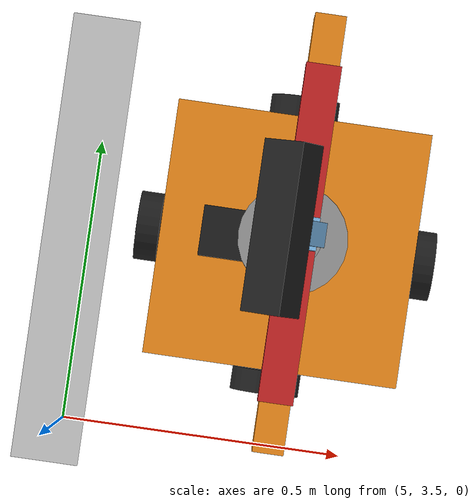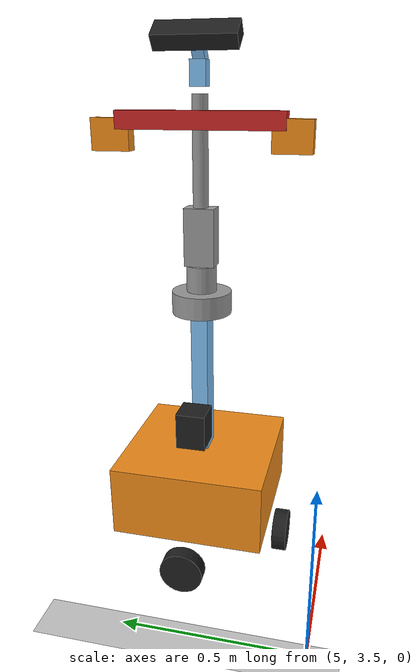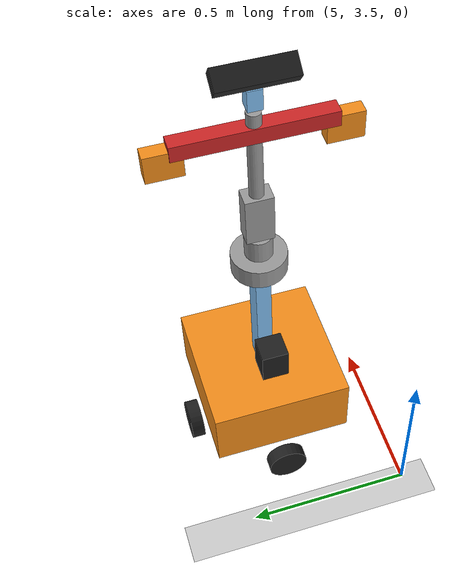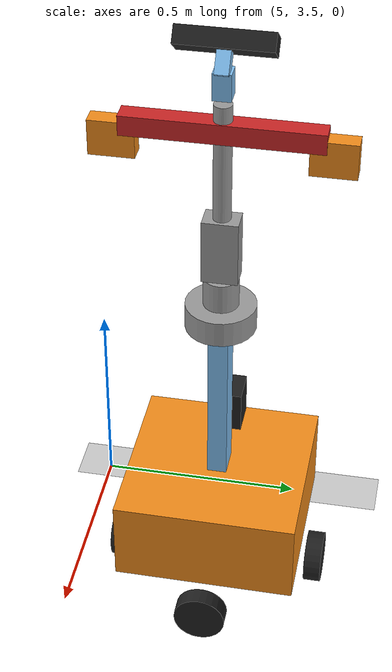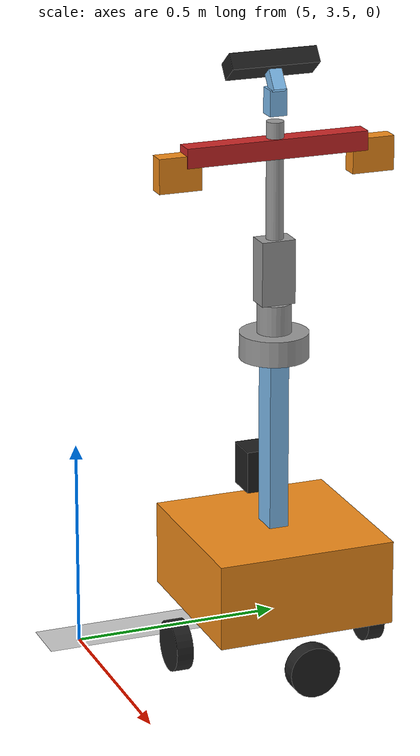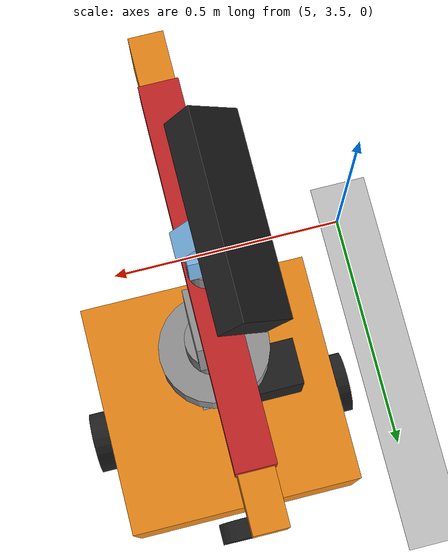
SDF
<sdf version="1.4">
 <world name="default">
  <scene>
   <ambient>0.5 0.5 0.5 1</ambient>
   <shadows>0</shadows>
   <grid>0</grid>
   <background>0.7 0.7 0.7 1</background>
  </scene>
  <physics type="ode">
   <real_time_update_rate>333.0</real_time_update_rate>
   <max_step_size>0.003</max_step_size>
   <ode><solver><type>quick</type><iters>100</iters></solver><constraints><cfm>0.0001</cfm></constraints></ode>
  </physics>
  <model name="gplane">
   <link name="body">
    <collision name="gplane_coll">
     <geometry><plane><normal>0 0 1</normal><size>10.075 13.18</size></plane></geometry>
     <surface><contact><ode><kp>1e+06</kp><kd>1</kd></ode></contact></surface>
     <laser_retro>2000</laser_retro>
    </collision>
    <visual name="gplane_vis">
     <geometry><plane><normal>0 0 1</normal><size>10.075 13.18</size></plane></geometry>
     <material>
      <script>
       <uri>model://base_materials/carpet/scripts</uri>
       <uri>model://base_materials/carpet/textures</uri>
       <name>carpet/carpet01</name>
      </script>
     </material>
     <cast_shadows>0</cast_shadows>
    </visual>
    <velocity_decay><linear>0</linear><angular>0</angular></velocity_decay>
   </link>
   <static>1</static>
  </model>
  <light name="inner_point_white1" type="point">
   <pose>4 5 4 0 0 0</pose>
   <diffuse>0.2 0.2 0.2 1</diffuse>
   <specular>0.1 0.1 0.1 1</specular>
   <attenuation>
    <range>20</range>
    <linear>0.1</linear>
    <constant>0.2</constant>
    <quadratic>0</quadratic>
   </attenuation>
   <cast_shadows>0</cast_shadows>
   <direction>0 0 -1</direction>
  </light>
  <light name="inner_point_white2" type="point">
   <pose>4 10 4 0 0 0</pose>
   <diffuse>0.2 0.2 0.2 1</diffuse>
   <specular>0.1 0.1 0.1 1</specular>
   <attenuation>
    <range>20</range>
    <linear>0.1</linear>
    <constant>0.2</constant>
    <quadratic>0</quadratic>
   </attenuation>
   <cast_shadows>0</cast_shadows>
   <direction>0 0 -1</direction>
  </light>
  <light name="inner_point_white3" type="point">
   <pose>8 5 4 0 0 0</pose>
   <diffuse>0.2 0.2 0.2 1</diffuse>
   <specular>0.1 0.1 0.1 1</specular>
   <attenuation>
    <range>20</range>
    <linear>0.1</linear>
    <constant>0.2</constant>
    <quadratic>0</quadratic>
   </attenuation>
   <cast_shadows>0</cast_shadows>
   <direction>0 0 -1</direction>
  </light>
  <light name="inner_point_white4" type="point">
   <pose>8 10 4 0 0 0</pose>
   <diffuse>0.2 0.2 0.2 1</diffuse>
   <specular>0.1 0.1 0.1 1</specular>
   <attenuation>
    <range>20</range>
    <linear>0.1</linear>
    <constant>0.2</constant>
    <quadratic>0</quadratic>
   </attenuation>
   <cast_shadows>0</cast_shadows>
   <direction>0 0 -1</direction>
  </light>
  <include>
   <static>0</static>
   <uri>model://justina_simple</uri>
   <pose>5.35 3.86 0.05 0 0 3.14</pose>
   <name>justina</name>
  </include>
 </world>
</sdf>

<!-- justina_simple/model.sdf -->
<sdf version='1.6'>
  <model name='justina_simple'>
    <link name='base_link'>
      <pose frame=''>0 0 0 0 -0 0</pose>
      <inertial>
        <pose frame=''>0.001268 0 0.809239 0 -0 0</pose>
        <mass>13.8</mass>
        <inertia>
          <ixx>4.08206</ixx>
          <ixy>-1.50756e-09</ixy>
          <ixz>-0.000861703</ixz>
          <iyy>4.02369</iyy>
          <iyz>1.14605e-09</iyz>
          <izz>0.289949</izz>
        </inertia>
      </inertial>
      <collision name='base_link_collision'>
        <pose frame=''>0 0 0.235 0 -0 0</pose>
        <geometry>
          <box>
            <size>0.42 0.42 0.2</size>
          </box>
        </geometry>
        <surface>
          <contact>
            <ode/>
          </contact>
          <friction>
            <ode/>
          </friction>
        </surface>
      </collision>
      <collision name='base_link_fixed_joint_lump__laser_link_collision_1'>
        <pose frame=''>0.1 0 0.44 0 -0 0</pose>
        <geometry>
          <box>
            <size>0.08 0.08 0.1</size>
          </box>
        </geometry>
        <surface>
          <contact>
            <ode/>
          </contact>
          <friction>
            <ode/>
          </friction>
        </surface>
      </collision>
      <collision name='base_link_fixed_joint_lump__spine_link_collision_2'>
        <pose frame=''>0 0 0.41 0 -0 0</pose>
        <geometry>
          <box>
            <size>0.07 0.045 0.7</size>
          </box>
        </geometry>
        <surface>
          <contact>
            <ode/>
          </contact>
          <friction>
            <ode/>
          </friction>
        </surface>
      </collision>
      <collision name='base_link_fixed_joint_lump__waist_link_collision_3'>
        <pose frame=''>0 0 0.77 0 -0 0</pose>
        <geometry>
          <cylinder>
            <length>0.06</length>
            <radius>0.08</radius>
          </cylinder>
        </geometry>
        <surface>
          <contact>
            <ode/>
          </contact>
          <friction>
            <ode/>
          </friction>
        </surface>
      </collision>
      <collision name='base_link_fixed_joint_lump__waist_link_collision_4'>
        <pose frame=''>0 0 0.83 0 -0 0</pose>
        <geometry>
          <cylinder>
            <length>0.08</length>
            <radius>0.04</radius>
          </cylinder>
        </geometry>
        <surface>
          <contact>
            <ode/>
          </contact>
          <friction>
            <ode/>
          </friction>
        </surface>
      </collision>
      <collision name='base_link_fixed_joint_lump__waist_link_collision_5'>
        <pose frame=''>0 0 0.945 0 -0 0</pose>
        <geometry>
          <box>
            <size>0.055 0.08 0.15</size>
          </box>
        </geometry>
        <surface>
          <contact>
            <ode/>
          </contact>
          <friction>
            <ode/>
          </friction>
        </surface>
      </collision>
      <collision name='base_link_fixed_joint_lump__waist_link_collision_6'>
        <pose frame=''>0 0 1.155 0 -0 0</pose>
        <geometry>
          <cylinder>
            <length>0.27</length>
            <radius>0.02</radius>
          </cylinder>
        </geometry>
        <surface>
          <contact>
            <ode/>
          </contact>
          <friction>
            <ode/>
          </friction>
        </surface>
      </collision>
      <collision name='base_link_fixed_joint_lump__shoulders_link_collision_7'>
        <pose frame=''>0 0 1.23 0 -0 0</pose>
        <geometry>
          <box>
            <size>0.045 0.43 0.045</size>
          </box>
        </geometry>
        <surface>
          <contact>
            <ode/>
          </contact>
          <friction>
            <ode/>
          </friction>
        </surface>
      </collision>
      <collision name='base_link_fixed_joint_lump__head_link1_collision_8'>
        <pose frame=''>0 0 1.335 0 -0 0</pose>
        <geometry>
          <box>
            <size>0.04 0.04 0.06</size>
          </box>
        </geometry>
        <surface>
          <contact>
            <ode/>
          </contact>
          <friction>
            <ode/>
          </friction>
        </surface>
      </collision>
      <collision name='base_link_fixed_joint_lump__head_link2_collision_9'>
        <pose frame=''>0.006844 0 1.39112 0 0.65 0</pose>
        <geometry>
          <box>
            <size>0.03 0.03 0.08</size>
          </box>
        </geometry>
        <surface>
          <contact>
            <ode/>
          </contact>
          <friction>
            <ode/>
          </friction>
        </surface>
      </collision>
      <collision name='base_link_fixed_joint_lump__kinect_link_collision_10'>
        <pose frame=''>0.025 0 1.415 -2.2208 -2e-06 -1.5708</pose>
        <geometry>
          <box>
            <size>0.207 0.04 0.058</size>
          </box>
        </geometry>
        <surface>
          <contact>
            <ode/>
          </contact>
          <friction>
            <ode/>
          </friction>
        </surface>
      </collision>
      <collision name='base_link_fixed_joint_lump__shoulders_left_link_collision_11'>
        <pose frame=''>0 0.23 1.195 0 -0 0</pose>
        <geometry>
          <box>
            <size>0.04 0.1 0.08</size>
          </box>
        </geometry>
        <surface>
          <contact>
            <ode/>
          </contact>
          <friction>
            <ode/>
          </friction>
        </surface>
      </collision>
      <collision name='base_link_fixed_joint_lump__shoulders_right_link_collision_12'>
        <pose frame=''>0 -0.23 1.195 0 -0 0</pose>
        <geometry>
          <box>
            <size>0.04 0.1 0.08</size>
          </box>
        </geometry>
        <surface>
          <contact>
            <ode/>
          </contact>
          <friction>
            <ode/>
          </friction>
        </surface>
      </collision>
      <collision name='base_link_fixed_joint_lump__wheel_back_collision_13'>
        <pose frame=''>-0.24 0 0.065 1.5708 -0 1.5708</pose>
        <geometry>
          <cylinder>
            <length>0.04</length>
            <radius>0.06</radius>
          </cylinder>
        </geometry>
        <surface>
          <contact>
            <ode/>
          </contact>
          <friction>
            <ode/>
          </friction>
        </surface>
      </collision>
      <collision name='base_link_fixed_joint_lump__wheel_front_collision_14'>
        <pose frame=''>0.24 0 0.065 1.5708 -0 1.5708</pose>
        <geometry>
          <cylinder>
            <length>0.04</length>
            <radius>0.06</radius>
          </cylinder>
        </geometry>
        <surface>
          <contact>
            <ode/>
          </contact>
          <friction>
            <ode/>
          </friction>
        </surface>
      </collision>
      <collision name='base_link_fixed_joint_lump__wheel_left_collision_15'>
        <pose frame=''>0 -0.24 0.065 1.5708 -0 0</pose>
        <geometry>
          <cylinder>
            <length>0.04</length>
            <radius>0.06</radius>
          </cylinder>
        </geometry>
        <surface>
          <contact>
            <ode/>
          </contact>
          <friction>
            <ode/>
          </friction>
        </surface>
      </collision>
      <collision name='base_link_fixed_joint_lump__wheel_right_collision_16'>
        <pose frame=''>0 0.24 0.065 1.5708 -0 0</pose>
        <geometry>
          <cylinder>
            <length>0.04</length>
            <radius>0.06</radius>
          </cylinder>
        </geometry>
        <surface>
          <contact>
            <ode/>
          </contact>
          <friction>
            <ode/>
          </friction>
        </surface>
      </collision>
      <visual name='base_link_visual'>
        <pose frame=''>0 0 0.235 0 -0 0</pose>
        <geometry>
          <box>
            <size>0.42 0.42 0.2</size>
          </box>
        </geometry>
        <material>
          <script>
            <name>Gazebo/Orange</name>
            <uri>file://media/materials/scripts/gazebo.material</uri>
          </script>
        </material>
      </visual>
      <visual name='base_link_fixed_joint_lump__laser_link_visual_1'>
        <pose frame=''>0.1 0 0.44 0 -0 0</pose>
        <geometry>
          <box>
            <size>0.08 0.08 0.1</size>
          </box>
        </geometry>
        <material>
          <script>
            <name>Gazebo/Black</name>
            <uri>file://media/materials/scripts/gazebo.material</uri>
          </script>
        </material>
      </visual>
      <visual name='base_link_fixed_joint_lump__spine_link_visual_2'>
        <pose frame=''>0 0 0.41 0 -0 0</pose>
        <geometry>
          <box>
            <size>0.07 0.045 0.7</size>
          </box>
        </geometry>
        <material>
          <script>
            <name>Gazebo/SkyBlue</name>
            <uri>file://media/materials/scripts/gazebo.material</uri>
          </script>
        </material>
      </visual>
      <visual name='base_link_fixed_joint_lump__waist_link_visual_3'>
        <pose frame=''>0 0 0.77 0 -0 0</pose>
        <geometry>
          <cylinder>
            <length>0.06</length>
            <radius>0.08</radius>
          </cylinder>
        </geometry>
        <material>
          <script>
            <name>Gazebo/Grey</name>
            <uri>file://media/materials/scripts/gazebo.material</uri>
          </script>
        </material>
      </visual>
      <visual name='base_link_fixed_joint_lump__waist_link_visual_4'>
        <pose frame=''>0 0 0.83 0 -0 0</pose>
        <geometry>
          <cylinder>
            <length>0.08</length>
            <radius>0.04</radius>
          </cylinder>
        </geometry>
        <material>
          <script>
            <name>Gazebo/Grey</name>
            <uri>file://media/materials/scripts/gazebo.material</uri>
          </script>
        </material>
      </visual>
      <visual name='base_link_fixed_joint_lump__waist_link_visual_5'>
        <pose frame=''>0 0 0.945 0 -0 0</pose>
        <geometry>
          <box>
            <size>0.055 0.08 0.15</size>
          </box>
        </geometry>
        <material>
          <script>
            <name>Gazebo/Grey</name>
            <uri>file://media/materials/scripts/gazebo.material</uri>
          </script>
        </material>
      </visual>
      <visual name='base_link_fixed_joint_lump__waist_link_visual_6'>
        <pose frame=''>0 0 1.155 0 -0 0</pose>
        <geometry>
          <cylinder>
            <length>0.27</length>
            <radius>0.02</radius>
          </cylinder>
        </geometry>
        <material>
          <script>
            <name>Gazebo/Grey</name>
            <uri>file://media/materials/scripts/gazebo.material</uri>
          </script>
        </material>
      </visual>
      <visual name='base_link_fixed_joint_lump__shoulders_link_visual_7'>
        <pose frame=''>0 0 1.23 0 -0 0</pose>
        <geometry>
          <box>
            <size>0.045 0.43 0.045</size>
          </box>
        </geometry>
        <material>
          <script>
            <name>Gazebo/Red</name>
            <uri>file://media/materials/scripts/gazebo.material</uri>
          </script>
        </material>
      </visual>
      <visual name='base_link_fixed_joint_lump__head_link1_visual_8'>
        <pose frame=''>0 0 1.335 0 -0 0</pose>
        <geometry>
          <box>
            <size>0.04 0.04 0.06</size>
          </box>
        </geometry>
        <material>
          <script>
            <name>Gazebo/SkyBlue</name>
            <uri>file://media/materials/scripts/gazebo.material</uri>
          </script>
        </material>
      </visual>
      <visual name='base_link_fixed_joint_lump__head_link2_visual_9'>
        <pose frame=''>0.006844 0 1.39112 0 0.65 0</pose>
        <geometry>
          <box>
            <size>0.03 0.03 0.08</size>
          </box>
        </geometry>
        <material>
          <script>
            <name>Gazebo/SkyBlue</name>
            <uri>file://media/materials/scripts/gazebo.material</uri>
          </script>
        </material>
      </visual>
      <visual name='base_link_fixed_joint_lump__kinect_link_visual_10'>
        <pose frame=''>0.025 0 1.415 -2.2208 -2e-06 -1.5708</pose>
        <geometry>
          <box>
            <size>0.207 0.04 0.058</size>
          </box>
        </geometry>
        <material>
          <script>
            <name>Gazebo/Black</name>
            <uri>file://media/materials/scripts/gazebo.material</uri>
          </script>
        </material>
      </visual>
      <visual name='base_link_fixed_joint_lump__shoulders_left_link_visual_11'>
        <pose frame=''>0 0.23 1.195 0 -0 0</pose>
        <geometry>
          <box>
            <size>0.04 0.1 0.08</size>
          </box>
        </geometry>
        <material>
          <script>
            <name>Gazebo/Orange</name>
            <uri>file://media/materials/scripts/gazebo.material</uri>
          </script>
        </material>
      </visual>
      <visual name='base_link_fixed_joint_lump__shoulders_right_link_visual_12'>
        <pose frame=''>0 -0.23 1.195 0 -0 0</pose>
        <geometry>
          <box>
            <size>0.04 0.1 0.08</size>
          </box>
        </geometry>
        <material>
          <script>
            <name>Gazebo/Orange</name>
            <uri>file://media/materials/scripts/gazebo.material</uri>
          </script>
        </material>
      </visual>
      <visual name='base_link_fixed_joint_lump__wheel_back_visual_13'>
        <pose frame=''>-0.24 0 0.065 1.5708 -0 1.5708</pose>
        <geometry>
          <cylinder>
            <length>0.04</length>
            <radius>0.06</radius>
          </cylinder>
        </geometry>
        <material>
          <script>
            <name>Gazebo/Black</name>
            <uri>file://media/materials/scripts/gazebo.material</uri>
          </script>
        </material>
      </visual>
      <visual name='base_link_fixed_joint_lump__wheel_front_visual_14'>
        <pose frame=''>0.24 0 0.065 1.5708 -0 1.5708</pose>
        <geometry>
          <cylinder>
            <length>0.04</length>
            <radius>0.06</radius>
          </cylinder>
        </geometry>
        <material>
          <script>
            <name>Gazebo/Black</name>
            <uri>file://media/materials/scripts/gazebo.material</uri>
          </script>
        </material>
      </visual>
      <visual name='base_link_fixed_joint_lump__wheel_left_visual_15'>
        <pose frame=''>0 -0.24 0.065 1.5708 -0 0</pose>
        <geometry>
          <cylinder>
            <length>0.04</length>
            <radius>0.06</radius>
          </cylinder>
        </geometry>
        <material>
          <script>
            <name>Gazebo/Black</name>
            <uri>file://media/materials/scripts/gazebo.material</uri>
          </script>
        </material>
      </visual>
      <visual name='base_link_fixed_joint_lump__wheel_right_visual_16'>
        <pose frame=''>0 0.24 0.065 1.5708 -0 0</pose>
        <geometry>
          <cylinder>
            <length>0.04</length>
            <radius>0.06</radius>
          </cylinder>
        </geometry>
        <material>
          <script>
            <name>Gazebo/Black</name>
            <uri>file://media/materials/scripts/gazebo.material</uri>
          </script>
        </material>
      </visual>
      <velocity_decay/>
      <velocity_decay/>
      <velocity_decay/>
      <sensor name='hokuyo_sensor' type='ray'>
        <visualize>1</visualize>
        <update_rate>10</update_rate>
        <ray>
          <scan>
            <horizontal>
              <samples>370</samples>
              <resolution>0.5</resolution>
              <min_angle>-1.5708</min_angle>
              <max_angle>1.5708</max_angle>
            </horizontal>
          </scan>
          <range>
            <min>0.1</min>
            <max>10</max>
            <resolution>0.01</resolution>
          </range>
          <noise>
            <type>gaussian</type>
            <mean>0</mean>
            <stddev>0.01</stddev>
          </noise>
        </ray>
        <plugin name='gazebo_ros_hokuyo_controller' filename='libgazebo_ros_laser.so'>
          <topicName>/scan</topicName>
          <frameName>laser_link</frameName>
        </plugin>
        <pose frame=''>0.1 0 0.44 0 -0 0</pose>
      </sensor>
      <velocity_decay/>
      <velocity_decay/>
      <velocity_decay/>
      <velocity_decay/>
      <velocity_decay/>
      <velocity_decay/>
      <sensor name='kinect_justina' type='depth'>
        <update_rate>30</update_rate>
        <visualize>1</visualize>
        <always_on>1</always_on>
        <camera name='__default__'>
          <horizontal_fov>1.0472</horizontal_fov>
          <image>
            <width>640</width>
            <height>480</height>
            <format>B8G8R8</format>
          </image>
          <clip>
            <near>0.1</near>
            <far>100</far>
          </clip>
        </camera>
        <plugin name='kinect_controller' filename='libgazebo_ros_openni_kinect.so'>
          <baseline>0.2</baseline>
          <alwaysOn>1</alwaysOn>
          <updateRate>0.0</updateRate>
          <cameraName>kinect</cameraName>
          <imageTopicName>rgb/image_raw</imageTopicName>
          <cameraInfoTopicName>rgb/camera_info</cameraInfoTopicName>
          <depthImageTopicName>depth/image_raw</depthImageTopicName>
          <depthImageCameraInfoTopicName>depth/camera_info</depthImageCameraInfoTopicName>
          <pointCloudTopicName>points</pointCloudTopicName>
          <frameName>kinect_link</frameName>
          <pointCloudCutoffMax>3.5</pointCloudCutoffMax>
          <pointCloudCutoff>0.5</pointCloudCutoff>
          <CxPrime>0</CxPrime>
          <Cx>0</Cx>
          <Cy>0</Cy>
          <focalLength>0</focalLength>
          <hackBaseline>0</hackBaseline>
        </plugin>
        <pose frame=''>0.025 0 1.415 0 0.65 0</pose>
      </sensor>
      <velocity_decay/>
      <velocity_decay/>
      <velocity_decay/>
      <velocity_decay/>
      <velocity_decay/>
      <velocity_decay/>
      <gravity>1</gravity>
      <velocity_decay/>
    </link>
    <static>0</static>
    <plugin name='ros_control' filename='libgazebo_ros_control.so'>
      <robotNamespace>/justina_simple</robotNamespace>
    </plugin>
  </model>
</sdf>
